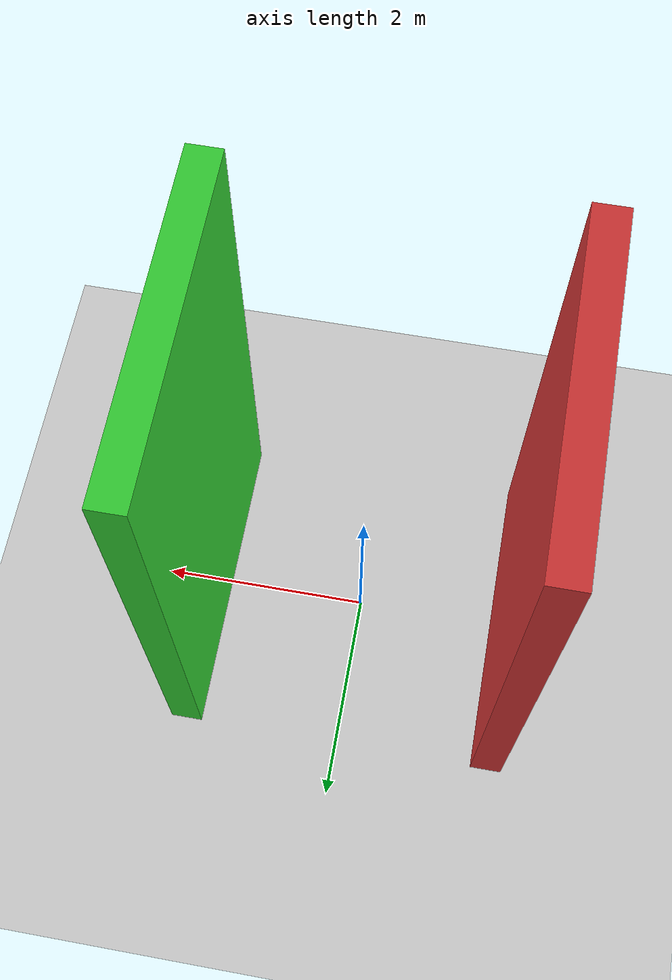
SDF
<?xml version="1.0"?>
<sdf version="1.6">
  <world name="custom_world">
    <!-- 基础环境（地面和光照） -->
    <include>
      <uri>model://ground_plane</uri>
    </include>
    <include>
      <uri>model://sun</uri>
    </include>

  <!-- ========== 主障碍结构 ========== -->
  <!-- 狭窄通道入口 (尺寸可调节) -->
  <model name="gate_entrance">
    <pose>0 0 2.5 0 0 0</pose>
    <link name="left_pillar">
      <pose>-1.5 0 0 0 0 0</pose>
      <visual name="visual">
        <geometry><box><size>0.3 3 5</size></box></geometry>
        <material><diffuse>0.8 0.2 0.2 1</diffuse></material>
      </visual>
    </link>
    <link name="right_pillar">
      <pose>1.5 0 0 0 0 0</pose>
      <visual name="visual">
        <geometry><box><size>0.3 3 5</size></box></geometry>
        <material><diffuse>0.2 0.8 0.2 1</diffuse></material>
      </visual>
    </link>
  </model>

  </world>
</sdf>
